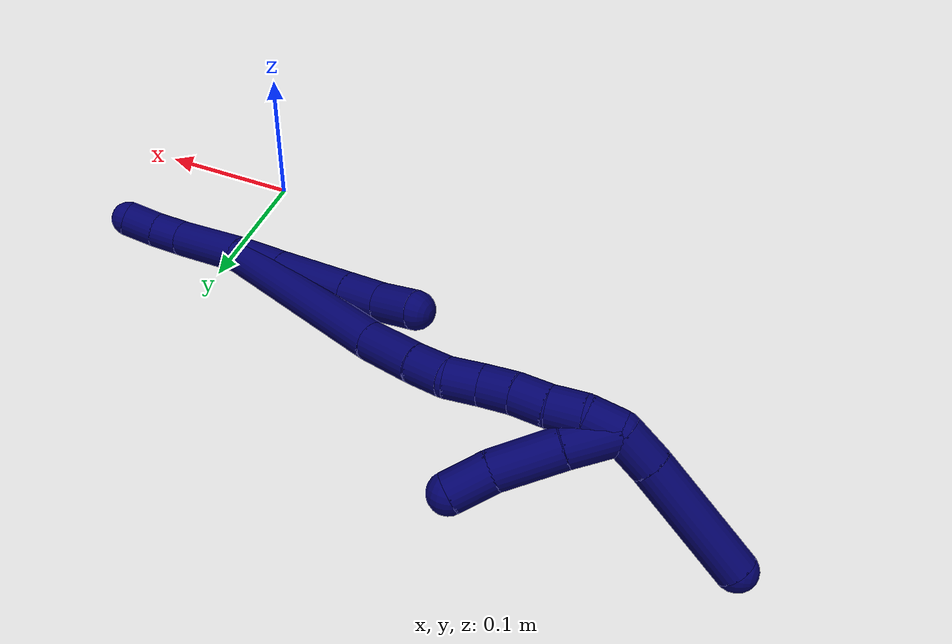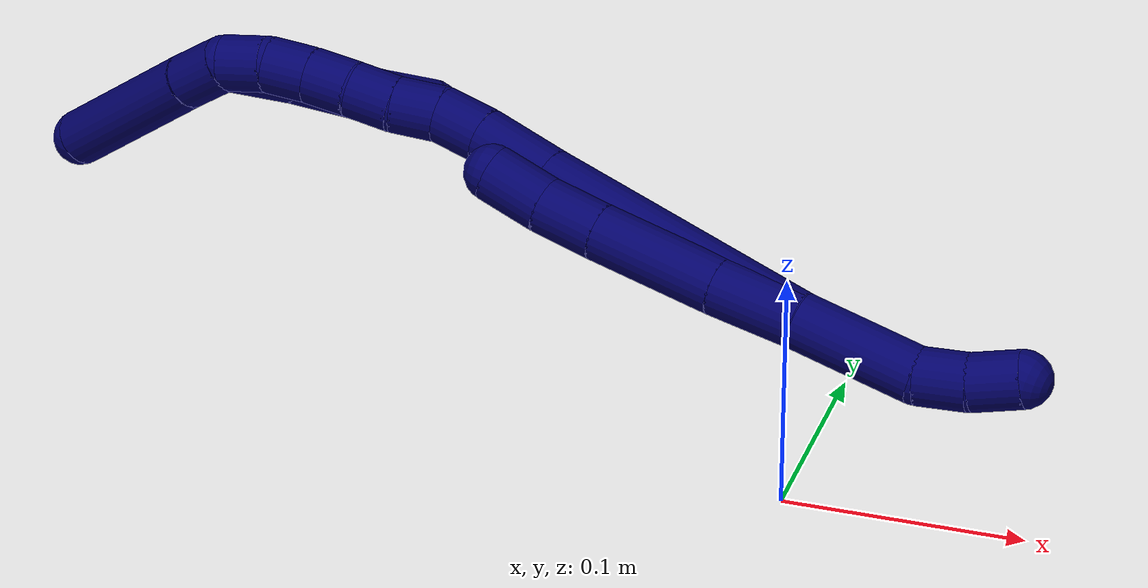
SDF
<sdf version="1.7">
 <world name="default">
  <model name="7">
   <static>0</static>
   <link name="7">
    <collision name="collision-cylinder-e_1_2_8">
     <pose>5e-06 1.1e-05 0.019255 -0.000583 0.000245 0</pose>
     <geometry><cylinder><radius>0.0125</radius><length>0.038511</length></cylinder></geometry>
     <surface>
      <friction><ode><mu>1.16</mu><mu2>1.16</mu2><slip1>0</slip1><slip2>0</slip2></ode></friction>
      <contact><ode><kp>1e+06</kp><kd>1</kd><max_vel>0</max_vel><min_depth>0.001</min_depth></ode></contact>
     </surface>
    </collision>
    <visual name="visual-cylinder-e_1_2_8">
     <pose>5e-06 1.1e-05 0.019255 -0.000583 0.000245 0</pose>
     <geometry><cylinder><radius>0.0125</radius><length>0.038511</length></cylinder></geometry>
     <material><ambient>0.003922 0 0.403922 1</ambient></material>
    </visual>
    <collision name="collision-cylinder-e_2_8_9">
     <pose>-0.001005 0.000509 0.066971 -0.017109 -0.035634 0.000305</pose>
     <geometry><cylinder><radius>0.0125</radius><length>0.056965</length></cylinder></geometry>
     <surface>
      <friction><ode><mu>1.16</mu><mu2>1.16</mu2><slip1>0</slip1><slip2>0</slip2></ode></friction>
      <contact><ode><kp>1e+06</kp><kd>1</kd><max_vel>0</max_vel><min_depth>0.001</min_depth></ode></contact>
     </surface>
    </collision>
    <visual name="visual-cylinder-e_2_8_9">
     <pose>-0.001005 0.000509 0.066971 -0.017109 -0.035634 0.000305</pose>
     <geometry><cylinder><radius>0.0125</radius><length>0.056965</length></cylinder></geometry>
     <material><ambient>0.003922 0 0.403922 1</ambient></material>
    </visual>
    <collision name="collision-cylinder-e_3_9_10">
     <pose>-0.002815 0.001289 0.109038 -0.021503 -0.058343 0.000627</pose>
     <geometry><cylinder><radius>0.0125</radius><length>0.027266</length></cylinder></geometry>
     <surface>
      <friction><ode><mu>1.16</mu><mu2>1.16</mu2><slip1>0</slip1><slip2>0</slip2></ode></friction>
      <contact><ode><kp>1e+06</kp><kd>1</kd><max_vel>0</max_vel><min_depth>0.001</min_depth></ode></contact>
     </surface>
    </collision>
    <visual name="visual-cylinder-e_3_9_10">
     <pose>-0.002815 0.001289 0.109038 -0.021503 -0.058343 0.000627</pose>
     <geometry><cylinder><radius>0.0125</radius><length>0.027266</length></cylinder></geometry>
     <material><ambient>0.003922 0 0.403922 1</ambient></material>
    </visual>
    <collision name="collision-cylinder-e_4_10_6">
     <pose>-0.005402 0.002913 0.13609 -0.098677 -0.13187 0.006521</pose>
     <geometry><cylinder><radius>0.0125</radius><length>0.027258</length></cylinder></geometry>
     <surface>
      <friction><ode><mu>1.16</mu><mu2>1.16</mu2><slip1>0</slip1><slip2>0</slip2></ode></friction>
      <contact><ode><kp>1e+06</kp><kd>1</kd><max_vel>0</max_vel><min_depth>0.001</min_depth></ode></contact>
     </surface>
    </collision>
    <visual name="visual-cylinder-e_4_10_6">
     <pose>-0.005402 0.002913 0.13609 -0.098677 -0.13187 0.006521</pose>
     <geometry><cylinder><radius>0.0125</radius><length>0.027258</length></cylinder></geometry>
     <material><ambient>0.003922 0 0.403922 1</ambient></material>
    </visual>
    <collision name="collision-cylinder-e_1_2_11">
     <pose>0.000908 -0.001333 -0.027502 3.09315 0.032981 1.19536</pose>
     <geometry><cylinder><radius>0.0125</radius><length>0.055099</length></cylinder></geometry>
     <surface>
      <friction><ode><mu>1.16</mu><mu2>1.16</mu2><slip1>0</slip1><slip2>0</slip2></ode></friction>
      <contact><ode><kp>1e+06</kp><kd>1</kd><max_vel>0</max_vel><min_depth>0.001</min_depth></ode></contact>
     </surface>
    </collision>
    <visual name="visual-cylinder-e_1_2_11">
     <pose>0.000908 -0.001333 -0.027502 3.09315 0.032981 1.19536</pose>
     <geometry><cylinder><radius>0.0125</radius><length>0.055099</length></cylinder></geometry>
     <material><ambient>0.003922 0 0.403922 1</ambient></material>
    </visual>
    <collision name="collision-cylinder-e_2_11_12">
     <pose>-0.001093 -0.00258 -0.065736 -3.1335 -0.264764 3.08083</pose>
     <geometry><cylinder><radius>0.0125</radius><length>0.022239</length></cylinder></geometry>
     <surface>
      <friction><ode><mu>1.16</mu><mu2>1.16</mu2><slip1>0</slip1><slip2>0</slip2></ode></friction>
      <contact><ode><kp>1e+06</kp><kd>1</kd><max_vel>0</max_vel><min_depth>0.001</min_depth></ode></contact>
     </surface>
    </collision>
    <visual name="visual-cylinder-e_2_11_12">
     <pose>-0.001093 -0.00258 -0.065736 -3.1335 -0.264764 3.08083</pose>
     <geometry><cylinder><radius>0.0125</radius><length>0.022239</length></cylinder></geometry>
     <material><ambient>0.003922 0 0.403922 1</ambient></material>
    </visual>
    <collision name="collision-cylinder-e_3_12_5">
     <pose>-0.00878 -0.001547 -0.086699 -3.04939 -0.435218 2.73019</pose>
     <geometry><cylinder><radius>0.0125</radius><length>0.022662</length></cylinder></geometry>
     <surface>
      <friction><ode><mu>1.16</mu><mu2>1.16</mu2><slip1>0</slip1><slip2>0</slip2></ode></friction>
      <contact><ode><kp>1e+06</kp><kd>1</kd><max_vel>0</max_vel><min_depth>0.001</min_depth></ode></contact>
     </surface>
    </collision>
    <visual name="visual-cylinder-e_3_12_5">
     <pose>-0.00878 -0.001547 -0.086699 -3.04939 -0.435218 2.73019</pose>
     <geometry><cylinder><radius>0.0125</radius><length>0.022662</length></cylinder></geometry>
     <material><ambient>0.003922 0 0.403922 1</ambient></material>
    </visual>
    <collision name="collision-cylinder-e_1_2_13">
     <pose>-0.010604 -0.010653 0.066927 0.157844 -0.155215 -0.0123</pose>
     <geometry><cylinder><radius>0.0125</radius><length>0.137189</length></cylinder></geometry>
     <surface>
      <friction><ode><mu>1.16</mu><mu2>1.16</mu2><slip1>0</slip1><slip2>0</slip2></ode></friction>
      <contact><ode><kp>1e+06</kp><kd>1</kd><max_vel>0</max_vel><min_depth>0.001</min_depth></ode></contact>
     </surface>
    </collision>
    <visual name="visual-cylinder-e_1_2_13">
     <pose>-0.010604 -0.010653 0.066927 0.157844 -0.155215 -0.0123</pose>
     <geometry><cylinder><radius>0.0125</radius><length>0.137189</length></cylinder></geometry>
     <material><ambient>0.003922 0 0.403922 1</ambient></material>
    </visual>
    <collision name="collision-cylinder-e_2_13_14">
     <pose>-0.02425 -0.02252 0.152107 0.066428 -0.16475 -0.005486</pose>
     <geometry><cylinder><radius>0.0125</radius><length>0.037087</length></cylinder></geometry>
     <surface>
      <friction><ode><mu>1.16</mu><mu2>1.16</mu2><slip1>0</slip1><slip2>0</slip2></ode></friction>
      <contact><ode><kp>1e+06</kp><kd>1</kd><max_vel>0</max_vel><min_depth>0.001</min_depth></ode></contact>
     </surface>
    </collision>
    <visual name="visual-cylinder-e_2_13_14">
     <pose>-0.02425 -0.02252 0.152107 0.066428 -0.16475 -0.005486</pose>
     <geometry><cylinder><radius>0.0125</radius><length>0.037087</length></cylinder></geometry>
     <material><ambient>0.003922 0 0.403922 1</ambient></material>
    </visual>
    <collision name="collision-cylinder-e_3_14_15">
     <pose>-0.028251 -0.024107 0.181881 0.032395 -0.083082 -0.001347</pose>
     <geometry><cylinder><radius>0.0125</radius><length>0.023136</length></cylinder></geometry>
     <surface>
      <friction><ode><mu>1.16</mu><mu2>1.16</mu2><slip1>0</slip1><slip2>0</slip2></ode></friction>
      <contact><ode><kp>1e+06</kp><kd>1</kd><max_vel>0</max_vel><min_depth>0.001</min_depth></ode></contact>
     </surface>
    </collision>
    <visual name="visual-cylinder-e_3_14_15">
     <pose>-0.028251 -0.024107 0.181881 0.032395 -0.083082 -0.001347</pose>
     <geometry><cylinder><radius>0.0125</radius><length>0.023136</length></cylinder></geometry>
     <material><ambient>0.003922 0 0.403922 1</ambient></material>
    </visual>
    <collision name="collision-cylinder-e_4_15_16">
     <pose>-0.027013 -0.023295 0.203716 -0.114484 0.208676 -0.012002</pose>
     <geometry><cylinder><radius>0.0125</radius><length>0.021221</length></cylinder></geometry>
     <surface>
      <friction><ode><mu>1.16</mu><mu2>1.16</mu2><slip1>0</slip1><slip2>0</slip2></ode></friction>
      <contact><ode><kp>1e+06</kp><kd>1</kd><max_vel>0</max_vel><min_depth>0.001</min_depth></ode></contact>
     </surface>
    </collision>
    <visual name="visual-cylinder-e_4_15_16">
     <pose>-0.027013 -0.023295 0.203716 -0.114484 0.208676 -0.012002</pose>
     <geometry><cylinder><radius>0.0125</radius><length>0.021221</length></cylinder></geometry>
     <material><ambient>0.003922 0 0.403922 1</ambient></material>
    </visual>
    <collision name="collision-cylinder-e_5_16_17">
     <pose>-0.024125 -0.021142 0.224018 -0.096535 0.068581 -0.003314</pose>
     <geometry><cylinder><radius>0.0125</radius><length>0.020121</length></cylinder></geometry>
     <surface>
      <friction><ode><mu>1.16</mu><mu2>1.16</mu2><slip1>0</slip1><slip2>0</slip2></ode></friction>
      <contact><ode><kp>1e+06</kp><kd>1</kd><max_vel>0</max_vel><min_depth>0.001</min_depth></ode></contact>
     </surface>
    </collision>
    <visual name="visual-cylinder-e_5_16_17">
     <pose>-0.024125 -0.021142 0.224018 -0.096535 0.068581 -0.003314</pose>
     <geometry><cylinder><radius>0.0125</radius><length>0.020121</length></cylinder></geometry>
     <material><ambient>0.003922 0 0.403922 1</ambient></material>
    </visual>
    <collision name="collision-cylinder-e_6_17_18">
     <pose>-0.022824 -0.020297 0.244287 0.011949 0.059419 0.000355</pose>
     <geometry><cylinder><radius>0.0125</radius><length>0.020595</length></cylinder></geometry>
     <surface>
      <friction><ode><mu>1.16</mu><mu2>1.16</mu2><slip1>0</slip1><slip2>0</slip2></ode></friction>
      <contact><ode><kp>1e+06</kp><kd>1</kd><max_vel>0</max_vel><min_depth>0.001</min_depth></ode></contact>
     </surface>
    </collision>
    <visual name="visual-cylinder-e_6_17_18">
     <pose>-0.022824 -0.020297 0.244287 0.011949 0.059419 0.000355</pose>
     <geometry><cylinder><radius>0.0125</radius><length>0.020595</length></cylinder></geometry>
     <material><ambient>0.003922 0 0.403922 1</ambient></material>
    </visual>
    <collision name="collision-cylinder-e_7_18_19">
     <pose>-0.020572 -0.019536 0.264482 -0.088865 0.163323 -0.007278</pose>
     <geometry><cylinder><radius>0.0125</radius><length>0.02018</length></cylinder></geometry>
     <surface>
      <friction><ode><mu>1.16</mu><mu2>1.16</mu2><slip1>0</slip1><slip2>0</slip2></ode></friction>
      <contact><ode><kp>1e+06</kp><kd>1</kd><max_vel>0</max_vel><min_depth>0.001</min_depth></ode></contact>
     </surface>
    </collision>
    <visual name="visual-cylinder-e_7_18_19">
     <pose>-0.020572 -0.019536 0.264482 -0.088865 0.163323 -0.007278</pose>
     <geometry><cylinder><radius>0.0125</radius><length>0.02018</length></cylinder></geometry>
     <material><ambient>0.003922 0 0.403922 1</ambient></material>
    </visual>
    <collision name="collision-cylinder-e_8_19_1">
     <pose>-0.015897 -0.019927 0.28409 0.130701 0.301021 0.019849</pose>
     <geometry><cylinder><radius>0.0125</radius><length>0.020471</length></cylinder></geometry>
     <surface>
      <friction><ode><mu>1.16</mu><mu2>1.16</mu2><slip1>0</slip1><slip2>0</slip2></ode></friction>
      <contact><ode><kp>1e+06</kp><kd>1</kd><max_vel>0</max_vel><min_depth>0.001</min_depth></ode></contact>
     </surface>
    </collision>
    <visual name="visual-cylinder-e_8_19_1">
     <pose>-0.015897 -0.019927 0.28409 0.130701 0.301021 0.019849</pose>
     <geometry><cylinder><radius>0.0125</radius><length>0.020471</length></cylinder></geometry>
     <material><ambient>0.003922 0 0.403922 1</ambient></material>
    </visual>
    <collision name="collision-cylinder-e_1_1_20">
     <pose>-0.007224 -0.027496 0.302614 0.619245 0.479339 0.156034</pose>
     <geometry><cylinder><radius>0.0125</radius><length>0.024447</length></cylinder></geometry>
     <surface>
      <friction><ode><mu>1.16</mu><mu2>1.16</mu2><slip1>0</slip1><slip2>0</slip2></ode></friction>
      <contact><ode><kp>1e+06</kp><kd>1</kd><max_vel>0</max_vel><min_depth>0.001</min_depth></ode></contact>
     </surface>
    </collision>
    <visual name="visual-cylinder-e_1_1_20">
     <pose>-0.007224 -0.027496 0.302614 0.619245 0.479339 0.156034</pose>
     <geometry><cylinder><radius>0.0125</radius><length>0.024447</length></cylinder></geometry>
     <material><ambient>0.003922 0 0.403922 1</ambient></material>
    </visual>
    <collision name="collision-cylinder-e_2_20_4">
     <pose>0.015196 -0.055024 0.3378 0.678199 0.460374 0.16494</pose>
     <geometry><cylinder><radius>0.0125</radius><length>0.075553</length></cylinder></geometry>
     <surface>
      <friction><ode><mu>1.16</mu><mu2>1.16</mu2><slip1>0</slip1><slip2>0</slip2></ode></friction>
      <contact><ode><kp>1e+06</kp><kd>1</kd><max_vel>0</max_vel><min_depth>0.001</min_depth></ode></contact>
     </surface>
    </collision>
    <visual name="visual-cylinder-e_2_20_4">
     <pose>0.015196 -0.055024 0.3378 0.678199 0.460374 0.16494</pose>
     <geometry><cylinder><radius>0.0125</radius><length>0.075553</length></cylinder></geometry>
     <material><ambient>0.003922 0 0.403922 1</ambient></material>
    </visual>
    <collision name="collision-cylinder-e_1_1_21">
     <pose>-0.01805 -0.029892 0.281764 2.51544 -0.336511 -0.966446</pose>
     <geometry><cylinder><radius>0.0125</radius><length>0.031425</length></cylinder></geometry>
     <surface>
      <friction><ode><mu>1.16</mu><mu2>1.16</mu2><slip1>0</slip1><slip2>0</slip2></ode></friction>
      <contact><ode><kp>1e+06</kp><kd>1</kd><max_vel>0</max_vel><min_depth>0.001</min_depth></ode></contact>
     </surface>
    </collision>
    <visual name="visual-cylinder-e_1_1_21">
     <pose>-0.01805 -0.029892 0.281764 2.51544 -0.336511 -0.966446</pose>
     <geometry><cylinder><radius>0.0125</radius><length>0.031425</length></cylinder></geometry>
     <material><ambient>0.003922 0 0.403922 1</ambient></material>
    </visual>
    <collision name="collision-cylinder-e_2_21_22">
     <pose>-0.029008 -0.050928 0.254262 2.46858 -0.283496 -0.774678</pose>
     <geometry><cylinder><radius>0.0125</radius><length>0.041251</length></cylinder></geometry>
     <surface>
      <friction><ode><mu>1.16</mu><mu2>1.16</mu2><slip1>0</slip1><slip2>0</slip2></ode></friction>
      <contact><ode><kp>1e+06</kp><kd>1</kd><max_vel>0</max_vel><min_depth>0.001</min_depth></ode></contact>
     </surface>
    </collision>
    <visual name="visual-cylinder-e_2_21_22">
     <pose>-0.029008 -0.050928 0.254262 2.46858 -0.283496 -0.774678</pose>
     <geometry><cylinder><radius>0.0125</radius><length>0.041251</length></cylinder></geometry>
     <material><ambient>0.003922 0 0.403922 1</ambient></material>
    </visual>
    <collision name="collision-cylinder-e_3_22_3">
     <pose>-0.039521 -0.072804 0.230218 2.30245 -0.354651 -0.764045</pose>
     <geometry><cylinder><radius>0.0125</radius><length>0.027324</length></cylinder></geometry>
     <surface>
      <friction><ode><mu>1.16</mu><mu2>1.16</mu2><slip1>0</slip1><slip2>0</slip2></ode></friction>
      <contact><ode><kp>1e+06</kp><kd>1</kd><max_vel>0</max_vel><min_depth>0.001</min_depth></ode></contact>
     </surface>
    </collision>
    <visual name="visual-cylinder-e_3_22_3">
     <pose>-0.039521 -0.072804 0.230218 2.30245 -0.354651 -0.764045</pose>
     <geometry><cylinder><radius>0.0125</radius><length>0.027324</length></cylinder></geometry>
     <material><ambient>0.003922 0 0.403922 1</ambient></material>
    </visual>
    <collision name="collision-sphere-3">
     <pose>-0.044265 -0.082337 0.221659 0 -0 0</pose>
     <geometry><sphere><radius>0.0125</radius></sphere></geometry>
     <surface>
      <friction><ode><mu>1.16</mu><mu2>1.16</mu2><slip1>0</slip1><slip2>0</slip2></ode></friction>
      <contact><ode><kp>1e+06</kp><kd>1</kd><max_vel>0</max_vel><min_depth>0.001</min_depth></ode></contact>
     </surface>
    </collision>
    <visual name="visual-sphere-3">
     <pose>-0.044265 -0.082337 0.221659 0 -0 0</pose>
     <geometry><sphere><radius>0.0125</radius></sphere></geometry>
     <material><ambient>0.003922 0 0.403922 1</ambient></material>
    </visual>
    <collision name="collision-sphere-22">
     <pose>-0.034777 -0.063271 0.238778 0 -0 0</pose>
     <geometry><sphere><radius>0.0125</radius></sphere></geometry>
     <surface>
      <friction><ode><mu>1.16</mu><mu2>1.16</mu2><slip1>0</slip1><slip2>0</slip2></ode></friction>
      <contact><ode><kp>1e+06</kp><kd>1</kd><max_vel>0</max_vel><min_depth>0.001</min_depth></ode></contact>
     </surface>
    </collision>
    <visual name="visual-sphere-22">
     <pose>-0.034777 -0.063271 0.238778 0 -0 0</pose>
     <geometry><sphere><radius>0.0125</radius></sphere></geometry>
     <material><ambient>0.003922 0 0.403922 1</ambient></material>
    </visual>
    <collision name="collision-sphere-21">
     <pose>-0.023238 -0.038584 0.269747 0 -0 0</pose>
     <geometry><sphere><radius>0.0125</radius></sphere></geometry>
     <surface>
      <friction><ode><mu>1.16</mu><mu2>1.16</mu2><slip1>0</slip1><slip2>0</slip2></ode></friction>
      <contact><ode><kp>1e+06</kp><kd>1</kd><max_vel>0</max_vel><min_depth>0.001</min_depth></ode></contact>
     </surface>
    </collision>
    <visual name="visual-sphere-21">
     <pose>-0.023238 -0.038584 0.269747 0 -0 0</pose>
     <geometry><sphere><radius>0.0125</radius></sphere></geometry>
     <material><ambient>0.003922 0 0.403922 1</ambient></material>
    </visual>
    <collision name="collision-sphere-4">
     <pose>0.03198 -0.076257 0.364154 0 -0 0</pose>
     <geometry><sphere><radius>0.0125</radius></sphere></geometry>
     <surface>
      <friction><ode><mu>1.16</mu><mu2>1.16</mu2><slip1>0</slip1><slip2>0</slip2></ode></friction>
      <contact><ode><kp>1e+06</kp><kd>1</kd><max_vel>0</max_vel><min_depth>0.001</min_depth></ode></contact>
     </surface>
    </collision>
    <visual name="visual-sphere-4">
     <pose>0.03198 -0.076257 0.364154 0 -0 0</pose>
     <geometry><sphere><radius>0.0125</radius></sphere></geometry>
     <material><ambient>0.003922 0 0.403922 1</ambient></material>
    </visual>
    <collision name="collision-sphere-20">
     <pose>-0.001587 -0.033791 0.311446 0 -0 0</pose>
     <geometry><sphere><radius>0.0125</radius></sphere></geometry>
     <surface>
      <friction><ode><mu>1.16</mu><mu2>1.16</mu2><slip1>0</slip1><slip2>0</slip2></ode></friction>
      <contact><ode><kp>1e+06</kp><kd>1</kd><max_vel>0</max_vel><min_depth>0.001</min_depth></ode></contact>
     </surface>
    </collision>
    <visual name="visual-sphere-20">
     <pose>-0.001587 -0.033791 0.311446 0 -0 0</pose>
     <geometry><sphere><radius>0.0125</radius></sphere></geometry>
     <material><ambient>0.003922 0 0.403922 1</ambient></material>
    </visual>
    <collision name="collision-sphere-11">
     <pose>0.001817 -0.002667 -0.055005 0 -0 0</pose>
     <geometry><sphere><radius>0.0125</radius></sphere></geometry>
     <surface>
      <friction><ode><mu>1.16</mu><mu2>1.16</mu2><slip1>0</slip1><slip2>0</slip2></ode></friction>
      <contact><ode><kp>1e+06</kp><kd>1</kd><max_vel>0</max_vel><min_depth>0.001</min_depth></ode></contact>
     </surface>
    </collision>
    <visual name="visual-sphere-11">
     <pose>0.001817 -0.002667 -0.055005 0 -0 0</pose>
     <geometry><sphere><radius>0.0125</radius></sphere></geometry>
     <material><ambient>0.003922 0 0.403922 1</ambient></material>
    </visual>
    <collision name="collision-sphere-6">
     <pose>-0.007194 0.004244 0.149535 0 -0 0</pose>
     <geometry><sphere><radius>0.0125</radius></sphere></geometry>
     <surface>
      <friction><ode><mu>1.16</mu><mu2>1.16</mu2><slip1>0</slip1><slip2>0</slip2></ode></friction>
      <contact><ode><kp>1e+06</kp><kd>1</kd><max_vel>0</max_vel><min_depth>0.001</min_depth></ode></contact>
     </surface>
    </collision>
    <visual name="visual-sphere-6">
     <pose>-0.007194 0.004244 0.149535 0 -0 0</pose>
     <geometry><sphere><radius>0.0125</radius></sphere></geometry>
     <material><ambient>0.003922 0 0.403922 1</ambient></material>
    </visual>
    <collision name="collision-sphere-10">
     <pose>-0.00361 0.001582 0.122645 0 -0 0</pose>
     <geometry><sphere><radius>0.0125</radius></sphere></geometry>
     <surface>
      <friction><ode><mu>1.16</mu><mu2>1.16</mu2><slip1>0</slip1><slip2>0</slip2></ode></friction>
      <contact><ode><kp>1e+06</kp><kd>1</kd><max_vel>0</max_vel><min_depth>0.001</min_depth></ode></contact>
     </surface>
    </collision>
    <visual name="visual-sphere-10">
     <pose>-0.00361 0.001582 0.122645 0 -0 0</pose>
     <geometry><sphere><radius>0.0125</radius></sphere></geometry>
     <material><ambient>0.003922 0 0.403922 1</ambient></material>
    </visual>
    <collision name="collision-sphere-9">
     <pose>-0.00202 0.000996 0.095431 0 -0 0</pose>
     <geometry><sphere><radius>0.0125</radius></sphere></geometry>
     <surface>
      <friction><ode><mu>1.16</mu><mu2>1.16</mu2><slip1>0</slip1><slip2>0</slip2></ode></friction>
      <contact><ode><kp>1e+06</kp><kd>1</kd><max_vel>0</max_vel><min_depth>0.001</min_depth></ode></contact>
     </surface>
    </collision>
    <visual name="visual-sphere-9">
     <pose>-0.00202 0.000996 0.095431 0 -0 0</pose>
     <geometry><sphere><radius>0.0125</radius></sphere></geometry>
     <material><ambient>0.003922 0 0.403922 1</ambient></material>
    </visual>
    <collision name="collision-sphere-2">
     <geometry><sphere><radius>0.0125</radius></sphere></geometry>
     <surface>
      <friction><ode><mu>1.16</mu><mu2>1.16</mu2><slip1>0</slip1><slip2>0</slip2></ode></friction>
      <contact><ode><kp>1e+06</kp><kd>1</kd><max_vel>0</max_vel><min_depth>0.001</min_depth></ode></contact>
     </surface>
    </collision>
    <visual name="visual-sphere-2">
     <geometry><sphere><radius>0.0125</radius></sphere></geometry>
     <material><ambient>0.003922 0 0.403922 1</ambient></material>
    </visual>
    <collision name="collision-sphere-19">
     <pose>-0.018931 -0.018653 0.274399 0 -0 0</pose>
     <geometry><sphere><radius>0.0125</radius></sphere></geometry>
     <surface>
      <friction><ode><mu>1.16</mu><mu2>1.16</mu2><slip1>0</slip1><slip2>0</slip2></ode></friction>
      <contact><ode><kp>1e+06</kp><kd>1</kd><max_vel>0</max_vel><min_depth>0.001</min_depth></ode></contact>
     </surface>
    </collision>
    <visual name="visual-sphere-19">
     <pose>-0.018931 -0.018653 0.274399 0 -0 0</pose>
     <geometry><sphere><radius>0.0125</radius></sphere></geometry>
     <material><ambient>0.003922 0 0.403922 1</ambient></material>
    </visual>
    <collision name="collision-sphere-8">
     <pose>9e-06 2.2e-05 0.038511 0 -0 0</pose>
     <geometry><sphere><radius>0.0125</radius></sphere></geometry>
     <surface>
      <friction><ode><mu>1.16</mu><mu2>1.16</mu2><slip1>0</slip1><slip2>0</slip2></ode></friction>
      <contact><ode><kp>1e+06</kp><kd>1</kd><max_vel>0</max_vel><min_depth>0.001</min_depth></ode></contact>
     </surface>
    </collision>
    <visual name="visual-sphere-8">
     <pose>9e-06 2.2e-05 0.038511 0 -0 0</pose>
     <geometry><sphere><radius>0.0125</radius></sphere></geometry>
     <material><ambient>0.003922 0 0.403922 1</ambient></material>
    </visual>
    <collision name="collision-sphere-12">
     <pose>-0.004003 -0.002493 -0.076468 0 -0 0</pose>
     <geometry><sphere><radius>0.0125</radius></sphere></geometry>
     <surface>
      <friction><ode><mu>1.16</mu><mu2>1.16</mu2><slip1>0</slip1><slip2>0</slip2></ode></friction>
      <contact><ode><kp>1e+06</kp><kd>1</kd><max_vel>0</max_vel><min_depth>0.001</min_depth></ode></contact>
     </surface>
    </collision>
    <visual name="visual-sphere-12">
     <pose>-0.004003 -0.002493 -0.076468 0 -0 0</pose>
     <geometry><sphere><radius>0.0125</radius></sphere></geometry>
     <material><ambient>0.003922 0 0.403922 1</ambient></material>
    </visual>
    <collision name="collision-sphere-5">
     <pose>-0.013557 -0.000601 -0.09693 0 -0 0</pose>
     <geometry><sphere><radius>0.0125</radius></sphere></geometry>
     <surface>
      <friction><ode><mu>1.16</mu><mu2>1.16</mu2><slip1>0</slip1><slip2>0</slip2></ode></friction>
      <contact><ode><kp>1e+06</kp><kd>1</kd><max_vel>0</max_vel><min_depth>0.001</min_depth></ode></contact>
     </surface>
    </collision>
    <visual name="visual-sphere-5">
     <pose>-0.013557 -0.000601 -0.09693 0 -0 0</pose>
     <geometry><sphere><radius>0.0125</radius></sphere></geometry>
     <material><ambient>0.003922 0 0.403922 1</ambient></material>
    </visual>
    <collision name="collision-sphere-13">
     <pose>-0.021208 -0.021305 0.133855 0 -0 0</pose>
     <geometry><sphere><radius>0.0125</radius></sphere></geometry>
     <surface>
      <friction><ode><mu>1.16</mu><mu2>1.16</mu2><slip1>0</slip1><slip2>0</slip2></ode></friction>
      <contact><ode><kp>1e+06</kp><kd>1</kd><max_vel>0</max_vel><min_depth>0.001</min_depth></ode></contact>
     </surface>
    </collision>
    <visual name="visual-sphere-13">
     <pose>-0.021208 -0.021305 0.133855 0 -0 0</pose>
     <geometry><sphere><radius>0.0125</radius></sphere></geometry>
     <material><ambient>0.003922 0 0.403922 1</ambient></material>
    </visual>
    <collision name="collision-sphere-14">
     <pose>-0.027291 -0.023734 0.170359 0 -0 0</pose>
     <geometry><sphere><radius>0.0125</radius></sphere></geometry>
     <surface>
      <friction><ode><mu>1.16</mu><mu2>1.16</mu2><slip1>0</slip1><slip2>0</slip2></ode></friction>
      <contact><ode><kp>1e+06</kp><kd>1</kd><max_vel>0</max_vel><min_depth>0.001</min_depth></ode></contact>
     </surface>
    </collision>
    <visual name="visual-sphere-14">
     <pose>-0.027291 -0.023734 0.170359 0 -0 0</pose>
     <geometry><sphere><radius>0.0125</radius></sphere></geometry>
     <material><ambient>0.003922 0 0.403922 1</ambient></material>
    </visual>
    <collision name="collision-sphere-15">
     <pose>-0.029211 -0.024481 0.193403 0 -0 0</pose>
     <geometry><sphere><radius>0.0125</radius></sphere></geometry>
     <surface>
      <friction><ode><mu>1.16</mu><mu2>1.16</mu2><slip1>0</slip1><slip2>0</slip2></ode></friction>
      <contact><ode><kp>1e+06</kp><kd>1</kd><max_vel>0</max_vel><min_depth>0.001</min_depth></ode></contact>
     </surface>
    </collision>
    <visual name="visual-sphere-15">
     <pose>-0.029211 -0.024481 0.193403 0 -0 0</pose>
     <geometry><sphere><radius>0.0125</radius></sphere></geometry>
     <material><ambient>0.003922 0 0.403922 1</ambient></material>
    </visual>
    <collision name="collision-sphere-16">
     <pose>-0.024814 -0.022109 0.214028 0 -0 0</pose>
     <geometry><sphere><radius>0.0125</radius></sphere></geometry>
     <surface>
      <friction><ode><mu>1.16</mu><mu2>1.16</mu2><slip1>0</slip1><slip2>0</slip2></ode></friction>
      <contact><ode><kp>1e+06</kp><kd>1</kd><max_vel>0</max_vel><min_depth>0.001</min_depth></ode></contact>
     </surface>
    </collision>
    <visual name="visual-sphere-16">
     <pose>-0.024814 -0.022109 0.214028 0 -0 0</pose>
     <geometry><sphere><radius>0.0125</radius></sphere></geometry>
     <material><ambient>0.003922 0 0.403922 1</ambient></material>
    </visual>
    <collision name="collision-sphere-17">
     <pose>-0.023436 -0.020174 0.234009 0 -0 0</pose>
     <geometry><sphere><radius>0.0125</radius></sphere></geometry>
     <surface>
      <friction><ode><mu>1.16</mu><mu2>1.16</mu2><slip1>0</slip1><slip2>0</slip2></ode></friction>
      <contact><ode><kp>1e+06</kp><kd>1</kd><max_vel>0</max_vel><min_depth>0.001</min_depth></ode></contact>
     </surface>
    </collision>
    <visual name="visual-sphere-17">
     <pose>-0.023436 -0.020174 0.234009 0 -0 0</pose>
     <geometry><sphere><radius>0.0125</radius></sphere></geometry>
     <material><ambient>0.003922 0 0.403922 1</ambient></material>
    </visual>
    <collision name="collision-sphere-18">
     <pose>-0.022213 -0.02042 0.254565 0 -0 0</pose>
     <geometry><sphere><radius>0.0125</radius></sphere></geometry>
     <surface>
      <friction><ode><mu>1.16</mu><mu2>1.16</mu2><slip1>0</slip1><slip2>0</slip2></ode></friction>
      <contact><ode><kp>1e+06</kp><kd>1</kd><max_vel>0</max_vel><min_depth>0.001</min_depth></ode></contact>
     </surface>
    </collision>
    <visual name="visual-sphere-18">
     <pose>-0.022213 -0.02042 0.254565 0 -0 0</pose>
     <geometry><sphere><radius>0.0125</radius></sphere></geometry>
     <material><ambient>0.003922 0 0.403922 1</ambient></material>
    </visual>
    <collision name="collision-sphere-1">
     <pose>-0.012862 -0.021201 0.293782 0 -0 0</pose>
     <geometry><sphere><radius>0.0125</radius></sphere></geometry>
     <surface>
      <friction><ode><mu>1.16</mu><mu2>1.16</mu2><slip1>0</slip1><slip2>0</slip2></ode></friction>
      <contact><ode><kp>1e+06</kp><kd>1</kd><max_vel>0</max_vel><min_depth>0.001</min_depth></ode></contact>
     </surface>
    </collision>
    <visual name="visual-sphere-1">
     <pose>-0.012862 -0.021201 0.293782 0 -0 0</pose>
     <geometry><sphere><radius>0.0125</radius></sphere></geometry>
     <material><ambient>0.003922 0 0.403922 1</ambient></material>
    </visual>
    <inertial>
     <pose>-0.010138 -0.019833 0.145194 0 -0 0</pose>
     <mass>0.75</mass>
     <inertia>
      <ixx>0.000318</ixx>
      <ixy>0</ixy>
      <ixz>0</ixz>
      <iyy>0.000287</iyy>
      <iyz>0</iyz>
      <izz>0.000115</izz>
     </inertia>
    </inertial>
   </link>
   <pose>-0.02029 0.099885 0.026154 1.34717 0.741215 -1.90082</pose>
  </model>
 </world>
</sdf>
